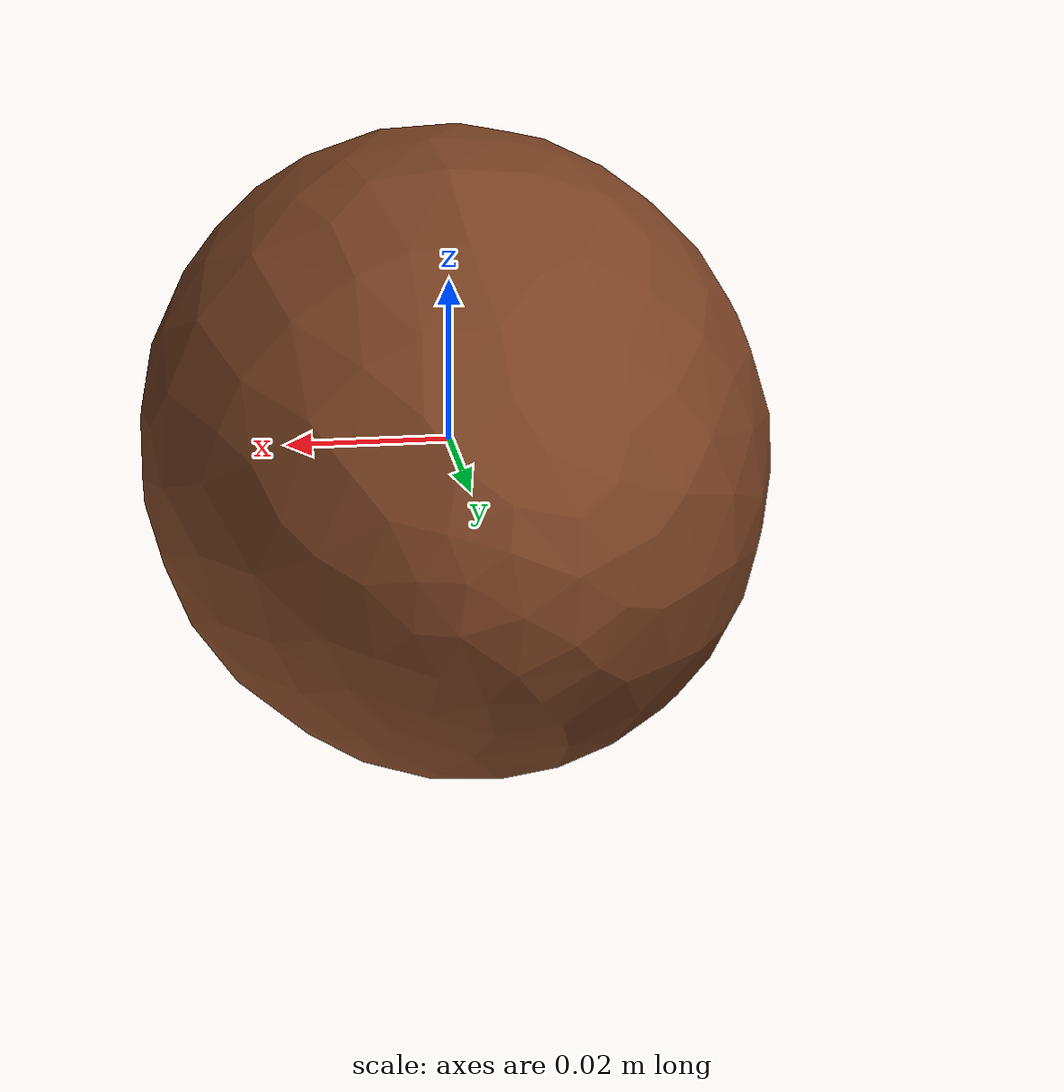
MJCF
<mujoco model="Egg_18">
  <compiler autolimits="true" boundmass="0.01" angle="radian"/>
  <default>
    <default class="/">
      <default class="__VISUAL_MJT__">
        <geom contype="0" conaffinity="0" group="0"/>
      </default>
      <default class="__STRUCTURAL_MJT__">
        <geom contype="8" conaffinity="15" group="4" friction="0.90000000000000002 0.90000000000000002 0.001" solref="0.025000000000000001 1" solimp="0.998 0.998 0.001"/>
      </default>
      <default class="__DYNAMIC_MJT__">
        <geom contype="1" conaffinity="15" group="4" friction="0.90000000000000002 0.90000000000000002 0.001" solref="0.025000000000000001 1" solimp="0.998 0.998 0.001"/>
      </default>
    </default>
  </default>
  <asset>
    <material name="material_Egg6_Mat" class="/" specular="0.5" shininess="0.5" rgba="0.48529410000000001 0.26198510000000003 0.13916519999999999 1"/>
    <mesh name="Egg_18_egg_18" class="/" file="Egg_18_egg_18/Egg_18_egg_18.obj" scale="1 1 1"/>
  </asset>
  <worldbody>
    <body name="Egg_18">
      <joint name="Egg_18_free" class="/" type="free" pos="0 0 0" axis="0 0 1" stiffness="0" range="0 0" armature="0" damping="0.10000000000000001" frictionloss="0"/>
      <body name="Egg_18_egg_18" pos="-0.00021000000000000001 0 -0.00013999999999999999" quat="1 0 0 0">
        <geom name="Egg_18_egg_18" class="__VISUAL_MJT__" type="mesh" material="material_Egg6_Mat" shellinertia="true" mesh="Egg_18_egg_18"/>
        <geom name="Egg_18_PrimitiveCollider_0" class="__DYNAMIC_MJT__" type="capsule" size="0.034034609794616699 0.019555483013391495" rgba="0 1 0 1" pos="-0 0 0" quat="0.70710678118654757 0.70710678118654746 0 0"/>
      </body>
    </body>
  </worldbody>
</mujoco>
